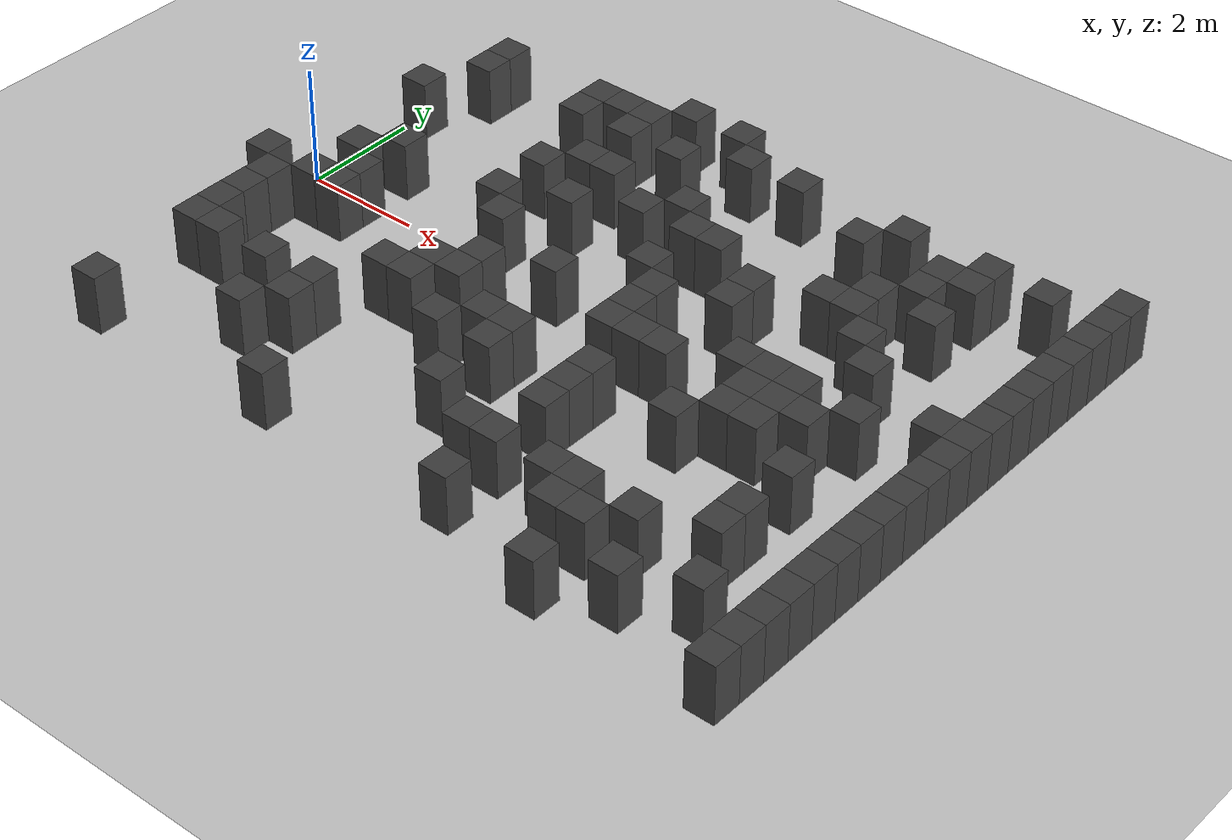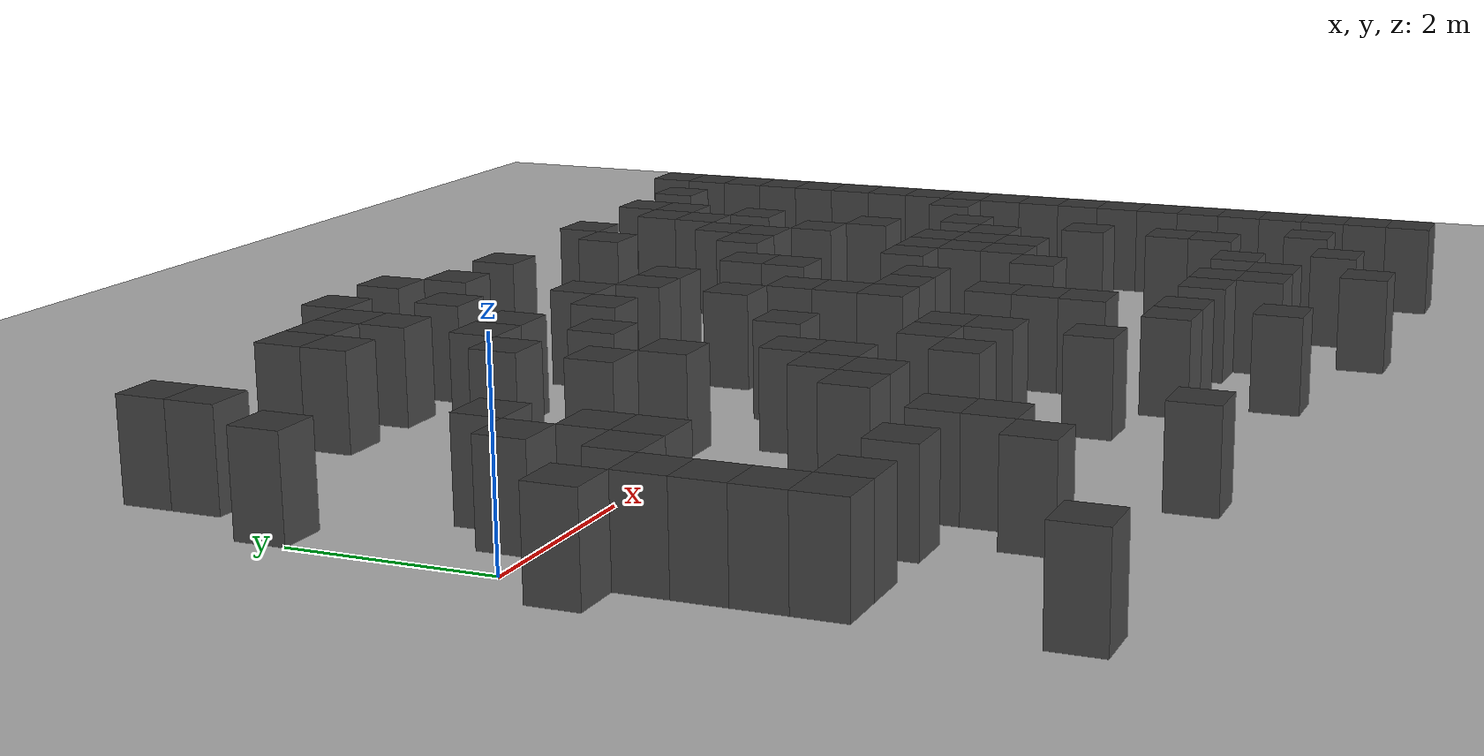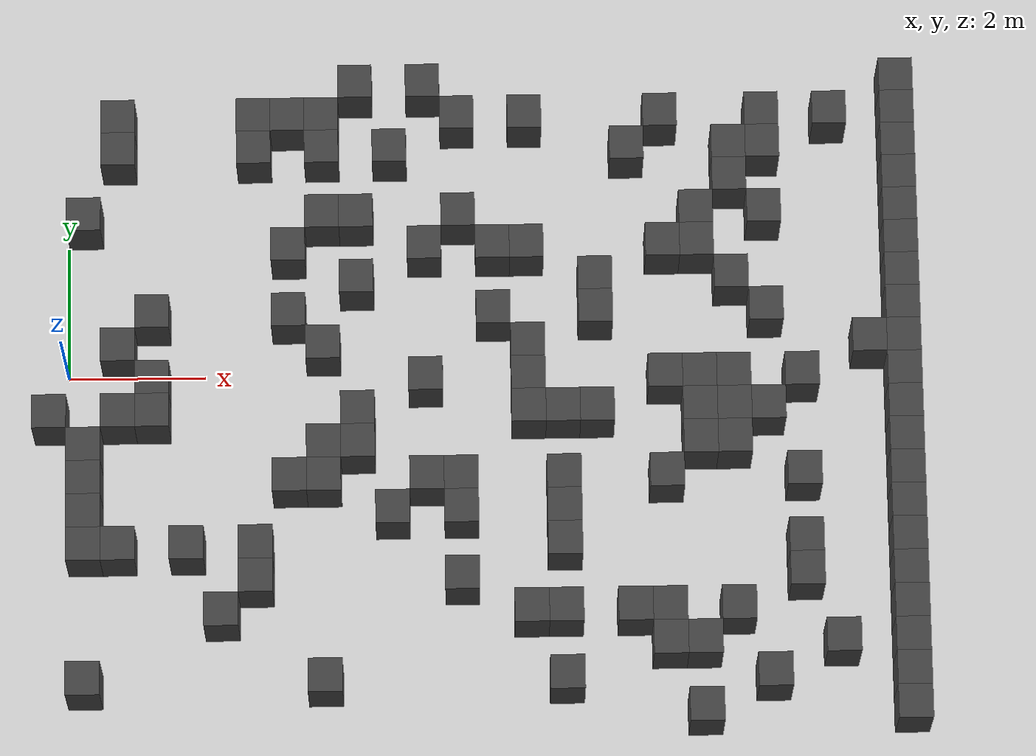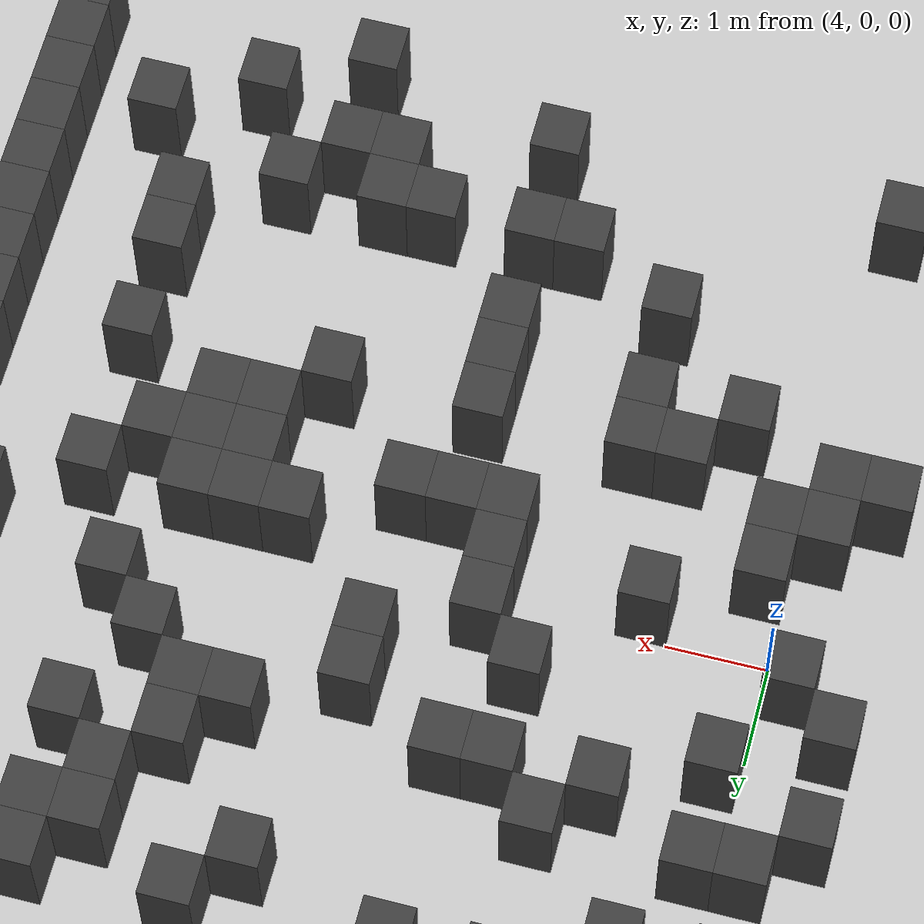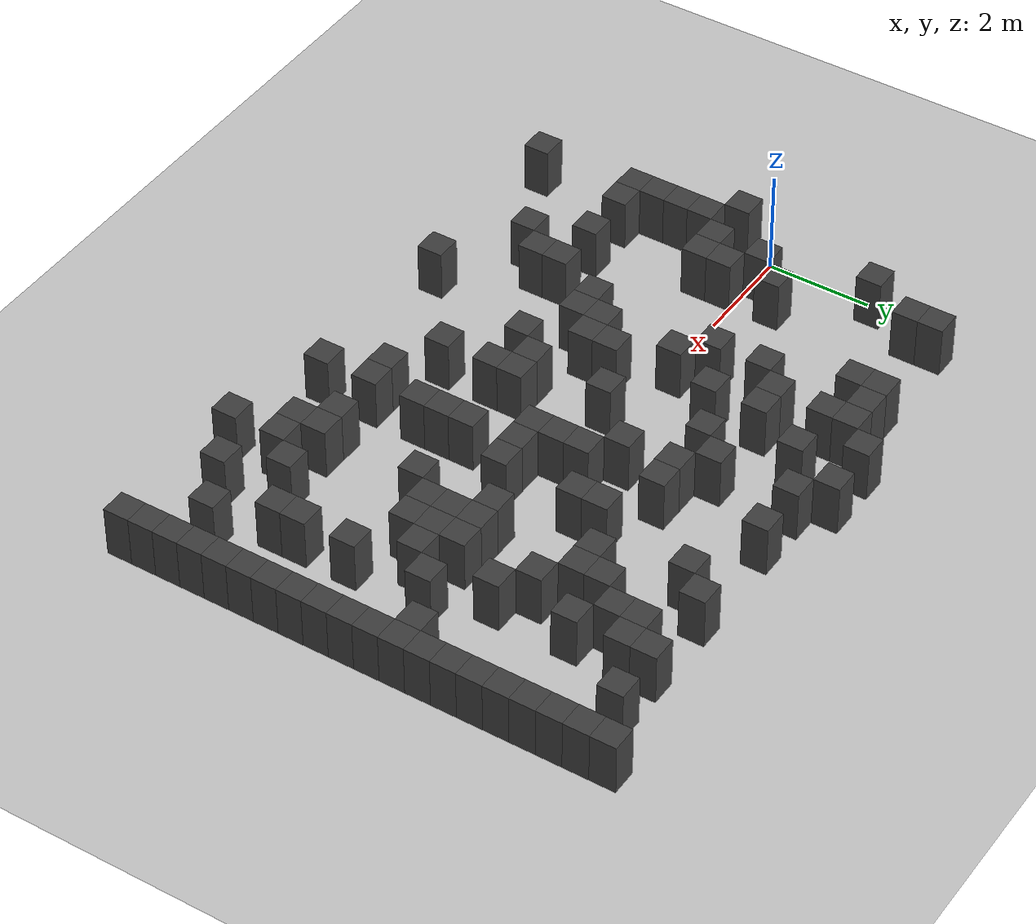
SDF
<sdf version="1.7">
 <world name="map_4752">
  <model name="ground_plane">
   <static>true</static>
   <link name="link">
    <collision name="collision">
     <geometry><plane><normal>0 0 1</normal><size>200 200</size></plane></geometry>
    </collision>
    <visual name="visual">
     <geometry><plane><normal>0 0 1</normal><size>200 200</size></plane></geometry>
     <material><ambient>0.8 0.8 0.8 1</ambient><diffuse>0.8 0.8 0.8 1</diffuse></material>
    </visual>
   </link>
  </model>
  <model name="maze_environment">
   <static>true</static>
   <link name="wall_246">
    <pose>4.250 4.250 0.500 0 0 0</pose>
    <collision name="col"><geometry><box><size>0.5 0.5 1.0</size></box></geometry></collision>
    <visual name="vis">
     <geometry><box><size>0.5 0.5 1.0</size></box></geometry>
     <material><ambient>0.15 0.15 0.15 1</ambient><diffuse>0.25 0.25 0.25 1</diffuse></material>
    </visual>
   </link>
   <link name="wall_247">
    <pose>5.250 4.250 0.500 0 0 0</pose>
    <collision name="col"><geometry><box><size>0.5 0.5 1.0</size></box></geometry></collision>
    <visual name="vis">
     <geometry><box><size>0.5 0.5 1.0</size></box></geometry>
     <material><ambient>0.15 0.15 0.15 1</ambient><diffuse>0.25 0.25 0.25 1</diffuse></material>
    </visual>
   </link>
   <link name="wall_248">
    <pose>12.250 4.250 0.500 0 0 0</pose>
    <collision name="col"><geometry><box><size>0.5 0.5 1.0</size></box></geometry></collision>
    <visual name="vis">
     <geometry><box><size>0.5 0.5 1.0</size></box></geometry>
     <material><ambient>0.15 0.15 0.15 1</ambient><diffuse>0.25 0.25 0.25 1</diffuse></material>
    </visual>
   </link>
   <link name="wall_257">
    <pose>0.750 3.750 0.500 0 0 0</pose>
    <collision name="col"><geometry><box><size>0.5 0.5 1.0</size></box></geometry></collision>
    <visual name="vis">
     <geometry><box><size>0.5 0.5 1.0</size></box></geometry>
     <material><ambient>0.15 0.15 0.15 1</ambient><diffuse>0.25 0.25 0.25 1</diffuse></material>
    </visual>
   </link>
   <link name="wall_258">
    <pose>2.750 3.750 0.500 0 0 0</pose>
    <collision name="col"><geometry><box><size>0.5 0.5 1.0</size></box></geometry></collision>
    <visual name="vis">
     <geometry><box><size>0.5 0.5 1.0</size></box></geometry>
     <material><ambient>0.15 0.15 0.15 1</ambient><diffuse>0.25 0.25 0.25 1</diffuse></material>
    </visual>
   </link>
   <link name="wall_259">
    <pose>3.250 3.750 0.500 0 0 0</pose>
    <collision name="col"><geometry><box><size>0.5 0.5 1.0</size></box></geometry></collision>
    <visual name="vis">
     <geometry><box><size>0.5 0.5 1.0</size></box></geometry>
     <material><ambient>0.15 0.15 0.15 1</ambient><diffuse>0.25 0.25 0.25 1</diffuse></material>
    </visual>
   </link>
   <link name="wall_260">
    <pose>3.750 3.750 0.500 0 0 0</pose>
    <collision name="col"><geometry><box><size>0.5 0.5 1.0</size></box></geometry></collision>
    <visual name="vis">
     <geometry><box><size>0.5 0.5 1.0</size></box></geometry>
     <material><ambient>0.15 0.15 0.15 1</ambient><diffuse>0.25 0.25 0.25 1</diffuse></material>
    </visual>
   </link>
   <link name="wall_261">
    <pose>5.750 3.750 0.500 0 0 0</pose>
    <collision name="col"><geometry><box><size>0.5 0.5 1.0</size></box></geometry></collision>
    <visual name="vis">
     <geometry><box><size>0.5 0.5 1.0</size></box></geometry>
     <material><ambient>0.15 0.15 0.15 1</ambient><diffuse>0.25 0.25 0.25 1</diffuse></material>
    </visual>
   </link>
   <link name="wall_262">
    <pose>6.750 3.750 0.500 0 0 0</pose>
    <collision name="col"><geometry><box><size>0.5 0.5 1.0</size></box></geometry></collision>
    <visual name="vis">
     <geometry><box><size>0.5 0.5 1.0</size></box></geometry>
     <material><ambient>0.15 0.15 0.15 1</ambient><diffuse>0.25 0.25 0.25 1</diffuse></material>
    </visual>
   </link>
   <link name="wall_263">
    <pose>8.750 3.750 0.500 0 0 0</pose>
    <collision name="col"><geometry><box><size>0.5 0.5 1.0</size></box></geometry></collision>
    <visual name="vis">
     <geometry><box><size>0.5 0.5 1.0</size></box></geometry>
     <material><ambient>0.15 0.15 0.15 1</ambient><diffuse>0.25 0.25 0.25 1</diffuse></material>
    </visual>
   </link>
   <link name="wall_264">
    <pose>10.250 3.750 0.500 0 0 0</pose>
    <collision name="col"><geometry><box><size>0.5 0.5 1.0</size></box></geometry></collision>
    <visual name="vis">
     <geometry><box><size>0.5 0.5 1.0</size></box></geometry>
     <material><ambient>0.15 0.15 0.15 1</ambient><diffuse>0.25 0.25 0.25 1</diffuse></material>
    </visual>
   </link>
   <link name="wall_265">
    <pose>11.250 3.750 0.500 0 0 0</pose>
    <collision name="col"><geometry><box><size>0.5 0.5 1.0</size></box></geometry></collision>
    <visual name="vis">
     <geometry><box><size>0.5 0.5 1.0</size></box></geometry>
     <material><ambient>0.15 0.15 0.15 1</ambient><diffuse>0.25 0.25 0.25 1</diffuse></material>
    </visual>
   </link>
   <link name="wall_266">
    <pose>12.250 3.750 0.500 0 0 0</pose>
    <collision name="col"><geometry><box><size>0.5 0.5 1.0</size></box></geometry></collision>
    <visual name="vis">
     <geometry><box><size>0.5 0.5 1.0</size></box></geometry>
     <material><ambient>0.15 0.15 0.15 1</ambient><diffuse>0.25 0.25 0.25 1</diffuse></material>
    </visual>
   </link>
   <link name="wall_272">
    <pose>0.750 3.250 0.500 0 0 0</pose>
    <collision name="col"><geometry><box><size>0.5 0.5 1.0</size></box></geometry></collision>
    <visual name="vis">
     <geometry><box><size>0.5 0.5 1.0</size></box></geometry>
     <material><ambient>0.15 0.15 0.15 1</ambient><diffuse>0.25 0.25 0.25 1</diffuse></material>
    </visual>
   </link>
   <link name="wall_273">
    <pose>2.750 3.250 0.500 0 0 0</pose>
    <collision name="col"><geometry><box><size>0.5 0.5 1.0</size></box></geometry></collision>
    <visual name="vis">
     <geometry><box><size>0.5 0.5 1.0</size></box></geometry>
     <material><ambient>0.15 0.15 0.15 1</ambient><diffuse>0.25 0.25 0.25 1</diffuse></material>
    </visual>
   </link>
   <link name="wall_274">
    <pose>3.750 3.250 0.500 0 0 0</pose>
    <collision name="col"><geometry><box><size>0.5 0.5 1.0</size></box></geometry></collision>
    <visual name="vis">
     <geometry><box><size>0.5 0.5 1.0</size></box></geometry>
     <material><ambient>0.15 0.15 0.15 1</ambient><diffuse>0.25 0.25 0.25 1</diffuse></material>
    </visual>
   </link>
   <link name="wall_275">
    <pose>4.750 3.250 0.500 0 0 0</pose>
    <collision name="col"><geometry><box><size>0.5 0.5 1.0</size></box></geometry></collision>
    <visual name="vis">
     <geometry><box><size>0.5 0.5 1.0</size></box></geometry>
     <material><ambient>0.15 0.15 0.15 1</ambient><diffuse>0.25 0.25 0.25 1</diffuse></material>
    </visual>
   </link>
   <link name="wall_276">
    <pose>8.250 3.250 0.500 0 0 0</pose>
    <collision name="col"><geometry><box><size>0.5 0.5 1.0</size></box></geometry></collision>
    <visual name="vis">
     <geometry><box><size>0.5 0.5 1.0</size></box></geometry>
     <material><ambient>0.15 0.15 0.15 1</ambient><diffuse>0.25 0.25 0.25 1</diffuse></material>
    </visual>
   </link>
   <link name="wall_277">
    <pose>9.750 3.250 0.500 0 0 0</pose>
    <collision name="col"><geometry><box><size>0.5 0.5 1.0</size></box></geometry></collision>
    <visual name="vis">
     <geometry><box><size>0.5 0.5 1.0</size></box></geometry>
     <material><ambient>0.15 0.15 0.15 1</ambient><diffuse>0.25 0.25 0.25 1</diffuse></material>
    </visual>
   </link>
   <link name="wall_278">
    <pose>10.250 3.250 0.500 0 0 0</pose>
    <collision name="col"><geometry><box><size>0.5 0.5 1.0</size></box></geometry></collision>
    <visual name="vis">
     <geometry><box><size>0.5 0.5 1.0</size></box></geometry>
     <material><ambient>0.15 0.15 0.15 1</ambient><diffuse>0.25 0.25 0.25 1</diffuse></material>
    </visual>
   </link>
   <link name="wall_279">
    <pose>12.250 3.250 0.500 0 0 0</pose>
    <collision name="col"><geometry><box><size>0.5 0.5 1.0</size></box></geometry></collision>
    <visual name="vis">
     <geometry><box><size>0.5 0.5 1.0</size></box></geometry>
     <material><ambient>0.15 0.15 0.15 1</ambient><diffuse>0.25 0.25 0.25 1</diffuse></material>
    </visual>
   </link>
   <link name="wall_286">
    <pose>9.750 2.750 0.500 0 0 0</pose>
    <collision name="col"><geometry><box><size>0.5 0.5 1.0</size></box></geometry></collision>
    <visual name="vis">
     <geometry><box><size>0.5 0.5 1.0</size></box></geometry>
     <material><ambient>0.15 0.15 0.15 1</ambient><diffuse>0.25 0.25 0.25 1</diffuse></material>
    </visual>
   </link>
   <link name="wall_287">
    <pose>12.250 2.750 0.500 0 0 0</pose>
    <collision name="col"><geometry><box><size>0.5 0.5 1.0</size></box></geometry></collision>
    <visual name="vis">
     <geometry><box><size>0.5 0.5 1.0</size></box></geometry>
     <material><ambient>0.15 0.15 0.15 1</ambient><diffuse>0.25 0.25 0.25 1</diffuse></material>
    </visual>
   </link>
   <link name="wall_296">
    <pose>0.250 2.250 0.500 0 0 0</pose>
    <collision name="col"><geometry><box><size>0.5 0.5 1.0</size></box></geometry></collision>
    <visual name="vis">
     <geometry><box><size>0.5 0.5 1.0</size></box></geometry>
     <material><ambient>0.15 0.15 0.15 1</ambient><diffuse>0.25 0.25 0.25 1</diffuse></material>
    </visual>
   </link>
   <link name="wall_297">
    <pose>3.750 2.250 0.500 0 0 0</pose>
    <collision name="col"><geometry><box><size>0.5 0.5 1.0</size></box></geometry></collision>
    <visual name="vis">
     <geometry><box><size>0.5 0.5 1.0</size></box></geometry>
     <material><ambient>0.15 0.15 0.15 1</ambient><diffuse>0.25 0.25 0.25 1</diffuse></material>
    </visual>
   </link>
   <link name="wall_298">
    <pose>4.250 2.250 0.500 0 0 0</pose>
    <collision name="col"><geometry><box><size>0.5 0.5 1.0</size></box></geometry></collision>
    <visual name="vis">
     <geometry><box><size>0.5 0.5 1.0</size></box></geometry>
     <material><ambient>0.15 0.15 0.15 1</ambient><diffuse>0.25 0.25 0.25 1</diffuse></material>
    </visual>
   </link>
   <link name="wall_299">
    <pose>5.750 2.250 0.500 0 0 0</pose>
    <collision name="col"><geometry><box><size>0.5 0.5 1.0</size></box></geometry></collision>
    <visual name="vis">
     <geometry><box><size>0.5 0.5 1.0</size></box></geometry>
     <material><ambient>0.15 0.15 0.15 1</ambient><diffuse>0.25 0.25 0.25 1</diffuse></material>
    </visual>
   </link>
   <link name="wall_300">
    <pose>9.250 2.250 0.500 0 0 0</pose>
    <collision name="col"><geometry><box><size>0.5 0.5 1.0</size></box></geometry></collision>
    <visual name="vis">
     <geometry><box><size>0.5 0.5 1.0</size></box></geometry>
     <material><ambient>0.15 0.15 0.15 1</ambient><diffuse>0.25 0.25 0.25 1</diffuse></material>
    </visual>
   </link>
   <link name="wall_301">
    <pose>10.250 2.250 0.500 0 0 0</pose>
    <collision name="col"><geometry><box><size>0.5 0.5 1.0</size></box></geometry></collision>
    <visual name="vis">
     <geometry><box><size>0.5 0.5 1.0</size></box></geometry>
     <material><ambient>0.15 0.15 0.15 1</ambient><diffuse>0.25 0.25 0.25 1</diffuse></material>
    </visual>
   </link>
   <link name="wall_302">
    <pose>12.250 2.250 0.500 0 0 0</pose>
    <collision name="col"><geometry><box><size>0.5 0.5 1.0</size></box></geometry></collision>
    <visual name="vis">
     <geometry><box><size>0.5 0.5 1.0</size></box></geometry>
     <material><ambient>0.15 0.15 0.15 1</ambient><diffuse>0.25 0.25 0.25 1</diffuse></material>
    </visual>
   </link>
   <link name="wall_308">
    <pose>3.250 1.750 0.500 0 0 0</pose>
    <collision name="col"><geometry><box><size>0.5 0.5 1.0</size></box></geometry></collision>
    <visual name="vis">
     <geometry><box><size>0.5 0.5 1.0</size></box></geometry>
     <material><ambient>0.15 0.15 0.15 1</ambient><diffuse>0.25 0.25 0.25 1</diffuse></material>
    </visual>
   </link>
   <link name="wall_309">
    <pose>5.250 1.750 0.500 0 0 0</pose>
    <collision name="col"><geometry><box><size>0.5 0.5 1.0</size></box></geometry></collision>
    <visual name="vis">
     <geometry><box><size>0.5 0.5 1.0</size></box></geometry>
     <material><ambient>0.15 0.15 0.15 1</ambient><diffuse>0.25 0.25 0.25 1</diffuse></material>
    </visual>
   </link>
   <link name="wall_310">
    <pose>6.250 1.750 0.500 0 0 0</pose>
    <collision name="col"><geometry><box><size>0.5 0.5 1.0</size></box></geometry></collision>
    <visual name="vis">
     <geometry><box><size>0.5 0.5 1.0</size></box></geometry>
     <material><ambient>0.15 0.15 0.15 1</ambient><diffuse>0.25 0.25 0.25 1</diffuse></material>
    </visual>
   </link>
   <link name="wall_311">
    <pose>6.750 1.750 0.500 0 0 0</pose>
    <collision name="col"><geometry><box><size>0.5 0.5 1.0</size></box></geometry></collision>
    <visual name="vis">
     <geometry><box><size>0.5 0.5 1.0</size></box></geometry>
     <material><ambient>0.15 0.15 0.15 1</ambient><diffuse>0.25 0.25 0.25 1</diffuse></material>
    </visual>
   </link>
   <link name="wall_312">
    <pose>8.750 1.750 0.500 0 0 0</pose>
    <collision name="col"><geometry><box><size>0.5 0.5 1.0</size></box></geometry></collision>
    <visual name="vis">
     <geometry><box><size>0.5 0.5 1.0</size></box></geometry>
     <material><ambient>0.15 0.15 0.15 1</ambient><diffuse>0.25 0.25 0.25 1</diffuse></material>
    </visual>
   </link>
   <link name="wall_313">
    <pose>9.250 1.750 0.500 0 0 0</pose>
    <collision name="col"><geometry><box><size>0.5 0.5 1.0</size></box></geometry></collision>
    <visual name="vis">
     <geometry><box><size>0.5 0.5 1.0</size></box></geometry>
     <material><ambient>0.15 0.15 0.15 1</ambient><diffuse>0.25 0.25 0.25 1</diffuse></material>
    </visual>
   </link>
   <link name="wall_314">
    <pose>12.250 1.750 0.500 0 0 0</pose>
    <collision name="col"><geometry><box><size>0.5 0.5 1.0</size></box></geometry></collision>
    <visual name="vis">
     <geometry><box><size>0.5 0.5 1.0</size></box></geometry>
     <material><ambient>0.15 0.15 0.15 1</ambient><diffuse>0.25 0.25 0.25 1</diffuse></material>
    </visual>
   </link>
   <link name="wall_320">
    <pose>4.250 1.250 0.500 0 0 0</pose>
    <collision name="col"><geometry><box><size>0.5 0.5 1.0</size></box></geometry></collision>
    <visual name="vis">
     <geometry><box><size>0.5 0.5 1.0</size></box></geometry>
     <material><ambient>0.15 0.15 0.15 1</ambient><diffuse>0.25 0.25 0.25 1</diffuse></material>
    </visual>
   </link>
   <link name="wall_321">
    <pose>7.750 1.250 0.500 0 0 0</pose>
    <collision name="col"><geometry><box><size>0.5 0.5 1.0</size></box></geometry></collision>
    <visual name="vis">
     <geometry><box><size>0.5 0.5 1.0</size></box></geometry>
     <material><ambient>0.15 0.15 0.15 1</ambient><diffuse>0.25 0.25 0.25 1</diffuse></material>
    </visual>
   </link>
   <link name="wall_322">
    <pose>9.750 1.250 0.500 0 0 0</pose>
    <collision name="col"><geometry><box><size>0.5 0.5 1.0</size></box></geometry></collision>
    <visual name="vis">
     <geometry><box><size>0.5 0.5 1.0</size></box></geometry>
     <material><ambient>0.15 0.15 0.15 1</ambient><diffuse>0.25 0.25 0.25 1</diffuse></material>
    </visual>
   </link>
   <link name="wall_323">
    <pose>12.250 1.250 0.500 0 0 0</pose>
    <collision name="col"><geometry><box><size>0.5 0.5 1.0</size></box></geometry></collision>
    <visual name="vis">
     <geometry><box><size>0.5 0.5 1.0</size></box></geometry>
     <material><ambient>0.15 0.15 0.15 1</ambient><diffuse>0.25 0.25 0.25 1</diffuse></material>
    </visual>
   </link>
   <link name="wall_334">
    <pose>1.250 0.750 0.500 0 0 0</pose>
    <collision name="col"><geometry><box><size>0.5 0.5 1.0</size></box></geometry></collision>
    <visual name="vis">
     <geometry><box><size>0.5 0.5 1.0</size></box></geometry>
     <material><ambient>0.15 0.15 0.15 1</ambient><diffuse>0.25 0.25 0.25 1</diffuse></material>
    </visual>
   </link>
   <link name="wall_335">
    <pose>3.250 0.750 0.500 0 0 0</pose>
    <collision name="col"><geometry><box><size>0.5 0.5 1.0</size></box></geometry></collision>
    <visual name="vis">
     <geometry><box><size>0.5 0.5 1.0</size></box></geometry>
     <material><ambient>0.15 0.15 0.15 1</ambient><diffuse>0.25 0.25 0.25 1</diffuse></material>
    </visual>
   </link>
   <link name="wall_336">
    <pose>6.250 0.750 0.500 0 0 0</pose>
    <collision name="col"><geometry><box><size>0.5 0.5 1.0</size></box></geometry></collision>
    <visual name="vis">
     <geometry><box><size>0.5 0.5 1.0</size></box></geometry>
     <material><ambient>0.15 0.15 0.15 1</ambient><diffuse>0.25 0.25 0.25 1</diffuse></material>
    </visual>
   </link>
   <link name="wall_337">
    <pose>7.750 0.750 0.500 0 0 0</pose>
    <collision name="col"><geometry><box><size>0.5 0.5 1.0</size></box></geometry></collision>
    <visual name="vis">
     <geometry><box><size>0.5 0.5 1.0</size></box></geometry>
     <material><ambient>0.15 0.15 0.15 1</ambient><diffuse>0.25 0.25 0.25 1</diffuse></material>
    </visual>
   </link>
   <link name="wall_338">
    <pose>10.250 0.750 0.500 0 0 0</pose>
    <collision name="col"><geometry><box><size>0.5 0.5 1.0</size></box></geometry></collision>
    <visual name="vis">
     <geometry><box><size>0.5 0.5 1.0</size></box></geometry>
     <material><ambient>0.15 0.15 0.15 1</ambient><diffuse>0.25 0.25 0.25 1</diffuse></material>
    </visual>
   </link>
   <link name="wall_339">
    <pose>12.250 0.750 0.500 0 0 0</pose>
    <collision name="col"><geometry><box><size>0.5 0.5 1.0</size></box></geometry></collision>
    <visual name="vis">
     <geometry><box><size>0.5 0.5 1.0</size></box></geometry>
     <material><ambient>0.15 0.15 0.15 1</ambient><diffuse>0.25 0.25 0.25 1</diffuse></material>
    </visual>
   </link>
   <link name="wall_343">
    <pose>0.750 0.250 0.500 0 0 0</pose>
    <collision name="col"><geometry><box><size>0.5 0.5 1.0</size></box></geometry></collision>
    <visual name="vis">
     <geometry><box><size>0.5 0.5 1.0</size></box></geometry>
     <material><ambient>0.15 0.15 0.15 1</ambient><diffuse>0.25 0.25 0.25 1</diffuse></material>
    </visual>
   </link>
   <link name="wall_344">
    <pose>3.750 0.250 0.500 0 0 0</pose>
    <collision name="col"><geometry><box><size>0.5 0.5 1.0</size></box></geometry></collision>
    <visual name="vis">
     <geometry><box><size>0.5 0.5 1.0</size></box></geometry>
     <material><ambient>0.15 0.15 0.15 1</ambient><diffuse>0.25 0.25 0.25 1</diffuse></material>
    </visual>
   </link>
   <link name="wall_345">
    <pose>6.750 0.250 0.500 0 0 0</pose>
    <collision name="col"><geometry><box><size>0.5 0.5 1.0</size></box></geometry></collision>
    <visual name="vis">
     <geometry><box><size>0.5 0.5 1.0</size></box></geometry>
     <material><ambient>0.15 0.15 0.15 1</ambient><diffuse>0.25 0.25 0.25 1</diffuse></material>
    </visual>
   </link>
   <link name="wall_346">
    <pose>11.750 0.250 0.500 0 0 0</pose>
    <collision name="col"><geometry><box><size>0.5 0.5 1.0</size></box></geometry></collision>
    <visual name="vis">
     <geometry><box><size>0.5 0.5 1.0</size></box></geometry>
     <material><ambient>0.15 0.15 0.15 1</ambient><diffuse>0.25 0.25 0.25 1</diffuse></material>
    </visual>
   </link>
   <link name="wall_347">
    <pose>12.250 0.250 0.500 0 0 0</pose>
    <collision name="col"><geometry><box><size>0.5 0.5 1.0</size></box></geometry></collision>
    <visual name="vis">
     <geometry><box><size>0.5 0.5 1.0</size></box></geometry>
     <material><ambient>0.15 0.15 0.15 1</ambient><diffuse>0.25 0.25 0.25 1</diffuse></material>
    </visual>
   </link>
   <link name="wall_355">
    <pose>1.250 -0.250 0.500 0 0 0</pose>
    <collision name="col"><geometry><box><size>0.5 0.5 1.0</size></box></geometry></collision>
    <visual name="vis">
     <geometry><box><size>0.5 0.5 1.0</size></box></geometry>
     <material><ambient>0.15 0.15 0.15 1</ambient><diffuse>0.25 0.25 0.25 1</diffuse></material>
    </visual>
   </link>
   <link name="wall_356">
    <pose>5.250 -0.250 0.500 0 0 0</pose>
    <collision name="col"><geometry><box><size>0.5 0.5 1.0</size></box></geometry></collision>
    <visual name="vis">
     <geometry><box><size>0.5 0.5 1.0</size></box></geometry>
     <material><ambient>0.15 0.15 0.15 1</ambient><diffuse>0.25 0.25 0.25 1</diffuse></material>
    </visual>
   </link>
   <link name="wall_357">
    <pose>6.750 -0.250 0.500 0 0 0</pose>
    <collision name="col"><geometry><box><size>0.5 0.5 1.0</size></box></geometry></collision>
    <visual name="vis">
     <geometry><box><size>0.5 0.5 1.0</size></box></geometry>
     <material><ambient>0.15 0.15 0.15 1</ambient><diffuse>0.25 0.25 0.25 1</diffuse></material>
    </visual>
   </link>
   <link name="wall_358">
    <pose>8.750 -0.250 0.500 0 0 0</pose>
    <collision name="col"><geometry><box><size>0.5 0.5 1.0</size></box></geometry></collision>
    <visual name="vis">
     <geometry><box><size>0.5 0.5 1.0</size></box></geometry>
     <material><ambient>0.15 0.15 0.15 1</ambient><diffuse>0.25 0.25 0.25 1</diffuse></material>
    </visual>
   </link>
   <link name="wall_359">
    <pose>9.250 -0.250 0.500 0 0 0</pose>
    <collision name="col"><geometry><box><size>0.5 0.5 1.0</size></box></geometry></collision>
    <visual name="vis">
     <geometry><box><size>0.5 0.5 1.0</size></box></geometry>
     <material><ambient>0.15 0.15 0.15 1</ambient><diffuse>0.25 0.25 0.25 1</diffuse></material>
    </visual>
   </link>
   <link name="wall_360">
    <pose>9.750 -0.250 0.500 0 0 0</pose>
    <collision name="col"><geometry><box><size>0.5 0.5 1.0</size></box></geometry></collision>
    <visual name="vis">
     <geometry><box><size>0.5 0.5 1.0</size></box></geometry>
     <material><ambient>0.15 0.15 0.15 1</ambient><diffuse>0.25 0.25 0.25 1</diffuse></material>
    </visual>
   </link>
   <link name="wall_361">
    <pose>10.750 -0.250 0.500 0 0 0</pose>
    <collision name="col"><geometry><box><size>0.5 0.5 1.0</size></box></geometry></collision>
    <visual name="vis">
     <geometry><box><size>0.5 0.5 1.0</size></box></geometry>
     <material><ambient>0.15 0.15 0.15 1</ambient><diffuse>0.25 0.25 0.25 1</diffuse></material>
    </visual>
   </link>
   <link name="wall_362">
    <pose>12.250 -0.250 0.500 0 0 0</pose>
    <collision name="col"><geometry><box><size>0.5 0.5 1.0</size></box></geometry></collision>
    <visual name="vis">
     <geometry><box><size>0.5 0.5 1.0</size></box></geometry>
     <material><ambient>0.15 0.15 0.15 1</ambient><diffuse>0.25 0.25 0.25 1</diffuse></material>
    </visual>
   </link>
   <link name="wall_369">
    <pose>-0.250 -0.750 0.500 0 0 0</pose>
    <collision name="col"><geometry><box><size>0.5 0.5 1.0</size></box></geometry></collision>
    <visual name="vis">
     <geometry><box><size>0.5 0.5 1.0</size></box></geometry>
     <material><ambient>0.15 0.15 0.15 1</ambient><diffuse>0.25 0.25 0.25 1</diffuse></material>
    </visual>
   </link>
   <link name="wall_370">
    <pose>0.750 -0.750 0.500 0 0 0</pose>
    <collision name="col"><geometry><box><size>0.5 0.5 1.0</size></box></geometry></collision>
    <visual name="vis">
     <geometry><box><size>0.5 0.5 1.0</size></box></geometry>
     <material><ambient>0.15 0.15 0.15 1</ambient><diffuse>0.25 0.25 0.25 1</diffuse></material>
    </visual>
   </link>
   <link name="wall_371">
    <pose>1.250 -0.750 0.500 0 0 0</pose>
    <collision name="col"><geometry><box><size>0.5 0.5 1.0</size></box></geometry></collision>
    <visual name="vis">
     <geometry><box><size>0.5 0.5 1.0</size></box></geometry>
     <material><ambient>0.15 0.15 0.15 1</ambient><diffuse>0.25 0.25 0.25 1</diffuse></material>
    </visual>
   </link>
   <link name="wall_372">
    <pose>4.250 -0.750 0.500 0 0 0</pose>
    <collision name="col"><geometry><box><size>0.5 0.5 1.0</size></box></geometry></collision>
    <visual name="vis">
     <geometry><box><size>0.5 0.5 1.0</size></box></geometry>
     <material><ambient>0.15 0.15 0.15 1</ambient><diffuse>0.25 0.25 0.25 1</diffuse></material>
    </visual>
   </link>
   <link name="wall_373">
    <pose>6.750 -0.750 0.500 0 0 0</pose>
    <collision name="col"><geometry><box><size>0.5 0.5 1.0</size></box></geometry></collision>
    <visual name="vis">
     <geometry><box><size>0.5 0.5 1.0</size></box></geometry>
     <material><ambient>0.15 0.15 0.15 1</ambient><diffuse>0.25 0.25 0.25 1</diffuse></material>
    </visual>
   </link>
   <link name="wall_374">
    <pose>7.250 -0.750 0.500 0 0 0</pose>
    <collision name="col"><geometry><box><size>0.5 0.5 1.0</size></box></geometry></collision>
    <visual name="vis">
     <geometry><box><size>0.5 0.5 1.0</size></box></geometry>
     <material><ambient>0.15 0.15 0.15 1</ambient><diffuse>0.25 0.25 0.25 1</diffuse></material>
    </visual>
   </link>
   <link name="wall_375">
    <pose>7.750 -0.750 0.500 0 0 0</pose>
    <collision name="col"><geometry><box><size>0.5 0.5 1.0</size></box></geometry></collision>
    <visual name="vis">
     <geometry><box><size>0.5 0.5 1.0</size></box></geometry>
     <material><ambient>0.15 0.15 0.15 1</ambient><diffuse>0.25 0.25 0.25 1</diffuse></material>
    </visual>
   </link>
   <link name="wall_376">
    <pose>9.250 -0.750 0.500 0 0 0</pose>
    <collision name="col"><geometry><box><size>0.5 0.5 1.0</size></box></geometry></collision>
    <visual name="vis">
     <geometry><box><size>0.5 0.5 1.0</size></box></geometry>
     <material><ambient>0.15 0.15 0.15 1</ambient><diffuse>0.25 0.25 0.25 1</diffuse></material>
    </visual>
   </link>
   <link name="wall_377">
    <pose>9.750 -0.750 0.500 0 0 0</pose>
    <collision name="col"><geometry><box><size>0.5 0.5 1.0</size></box></geometry></collision>
    <visual name="vis">
     <geometry><box><size>0.5 0.5 1.0</size></box></geometry>
     <material><ambient>0.15 0.15 0.15 1</ambient><diffuse>0.25 0.25 0.25 1</diffuse></material>
    </visual>
   </link>
   <link name="wall_378">
    <pose>10.250 -0.750 0.500 0 0 0</pose>
    <collision name="col"><geometry><box><size>0.5 0.5 1.0</size></box></geometry></collision>
    <visual name="vis">
     <geometry><box><size>0.5 0.5 1.0</size></box></geometry>
     <material><ambient>0.15 0.15 0.15 1</ambient><diffuse>0.25 0.25 0.25 1</diffuse></material>
    </visual>
   </link>
   <link name="wall_379">
    <pose>12.250 -0.750 0.500 0 0 0</pose>
    <collision name="col"><geometry><box><size>0.5 0.5 1.0</size></box></geometry></collision>
    <visual name="vis">
     <geometry><box><size>0.5 0.5 1.0</size></box></geometry>
     <material><ambient>0.15 0.15 0.15 1</ambient><diffuse>0.25 0.25 0.25 1</diffuse></material>
    </visual>
   </link>
   <link name="wall_387">
    <pose>0.250 -1.250 0.500 0 0 0</pose>
    <collision name="col"><geometry><box><size>0.5 0.5 1.0</size></box></geometry></collision>
    <visual name="vis">
     <geometry><box><size>0.5 0.5 1.0</size></box></geometry>
     <material><ambient>0.15 0.15 0.15 1</ambient><diffuse>0.25 0.25 0.25 1</diffuse></material>
    </visual>
   </link>
   <link name="wall_388">
    <pose>3.750 -1.250 0.500 0 0 0</pose>
    <collision name="col"><geometry><box><size>0.5 0.5 1.0</size></box></geometry></collision>
    <visual name="vis">
     <geometry><box><size>0.5 0.5 1.0</size></box></geometry>
     <material><ambient>0.15 0.15 0.15 1</ambient><diffuse>0.25 0.25 0.25 1</diffuse></material>
    </visual>
   </link>
   <link name="wall_389">
    <pose>4.250 -1.250 0.500 0 0 0</pose>
    <collision name="col"><geometry><box><size>0.5 0.5 1.0</size></box></geometry></collision>
    <visual name="vis">
     <geometry><box><size>0.5 0.5 1.0</size></box></geometry>
     <material><ambient>0.15 0.15 0.15 1</ambient><diffuse>0.25 0.25 0.25 1</diffuse></material>
    </visual>
   </link>
   <link name="wall_390">
    <pose>9.250 -1.250 0.500 0 0 0</pose>
    <collision name="col"><geometry><box><size>0.5 0.5 1.0</size></box></geometry></collision>
    <visual name="vis">
     <geometry><box><size>0.5 0.5 1.0</size></box></geometry>
     <material><ambient>0.15 0.15 0.15 1</ambient><diffuse>0.25 0.25 0.25 1</diffuse></material>
    </visual>
   </link>
   <link name="wall_391">
    <pose>9.750 -1.250 0.500 0 0 0</pose>
    <collision name="col"><geometry><box><size>0.5 0.5 1.0</size></box></geometry></collision>
    <visual name="vis">
     <geometry><box><size>0.5 0.5 1.0</size></box></geometry>
     <material><ambient>0.15 0.15 0.15 1</ambient><diffuse>0.25 0.25 0.25 1</diffuse></material>
    </visual>
   </link>
   <link name="wall_392">
    <pose>12.250 -1.250 0.500 0 0 0</pose>
    <collision name="col"><geometry><box><size>0.5 0.5 1.0</size></box></geometry></collision>
    <visual name="vis">
     <geometry><box><size>0.5 0.5 1.0</size></box></geometry>
     <material><ambient>0.15 0.15 0.15 1</ambient><diffuse>0.25 0.25 0.25 1</diffuse></material>
    </visual>
   </link>
   <link name="wall_400">
    <pose>0.250 -1.750 0.500 0 0 0</pose>
    <collision name="col"><geometry><box><size>0.5 0.5 1.0</size></box></geometry></collision>
    <visual name="vis">
     <geometry><box><size>0.5 0.5 1.0</size></box></geometry>
     <material><ambient>0.15 0.15 0.15 1</ambient><diffuse>0.25 0.25 0.25 1</diffuse></material>
    </visual>
   </link>
   <link name="wall_401">
    <pose>3.250 -1.750 0.500 0 0 0</pose>
    <collision name="col"><geometry><box><size>0.5 0.5 1.0</size></box></geometry></collision>
    <visual name="vis">
     <geometry><box><size>0.5 0.5 1.0</size></box></geometry>
     <material><ambient>0.15 0.15 0.15 1</ambient><diffuse>0.25 0.25 0.25 1</diffuse></material>
    </visual>
   </link>
   <link name="wall_402">
    <pose>3.750 -1.750 0.500 0 0 0</pose>
    <collision name="col"><geometry><box><size>0.5 0.5 1.0</size></box></geometry></collision>
    <visual name="vis">
     <geometry><box><size>0.5 0.5 1.0</size></box></geometry>
     <material><ambient>0.15 0.15 0.15 1</ambient><diffuse>0.25 0.25 0.25 1</diffuse></material>
    </visual>
   </link>
   <link name="wall_403">
    <pose>5.250 -1.750 0.500 0 0 0</pose>
    <collision name="col"><geometry><box><size>0.5 0.5 1.0</size></box></geometry></collision>
    <visual name="vis">
     <geometry><box><size>0.5 0.5 1.0</size></box></geometry>
     <material><ambient>0.15 0.15 0.15 1</ambient><diffuse>0.25 0.25 0.25 1</diffuse></material>
    </visual>
   </link>
   <link name="wall_404">
    <pose>5.750 -1.750 0.500 0 0 0</pose>
    <collision name="col"><geometry><box><size>0.5 0.5 1.0</size></box></geometry></collision>
    <visual name="vis">
     <geometry><box><size>0.5 0.5 1.0</size></box></geometry>
     <material><ambient>0.15 0.15 0.15 1</ambient><diffuse>0.25 0.25 0.25 1</diffuse></material>
    </visual>
   </link>
   <link name="wall_405">
    <pose>7.250 -1.750 0.500 0 0 0</pose>
    <collision name="col"><geometry><box><size>0.5 0.5 1.0</size></box></geometry></collision>
    <visual name="vis">
     <geometry><box><size>0.5 0.5 1.0</size></box></geometry>
     <material><ambient>0.15 0.15 0.15 1</ambient><diffuse>0.25 0.25 0.25 1</diffuse></material>
    </visual>
   </link>
   <link name="wall_406">
    <pose>8.750 -1.750 0.500 0 0 0</pose>
    <collision name="col"><geometry><box><size>0.5 0.5 1.0</size></box></geometry></collision>
    <visual name="vis">
     <geometry><box><size>0.5 0.5 1.0</size></box></geometry>
     <material><ambient>0.15 0.15 0.15 1</ambient><diffuse>0.25 0.25 0.25 1</diffuse></material>
    </visual>
   </link>
   <link name="wall_407">
    <pose>10.750 -1.750 0.500 0 0 0</pose>
    <collision name="col"><geometry><box><size>0.5 0.5 1.0</size></box></geometry></collision>
    <visual name="vis">
     <geometry><box><size>0.5 0.5 1.0</size></box></geometry>
     <material><ambient>0.15 0.15 0.15 1</ambient><diffuse>0.25 0.25 0.25 1</diffuse></material>
    </visual>
   </link>
   <link name="wall_408">
    <pose>12.250 -1.750 0.500 0 0 0</pose>
    <collision name="col"><geometry><box><size>0.5 0.5 1.0</size></box></geometry></collision>
    <visual name="vis">
     <geometry><box><size>0.5 0.5 1.0</size></box></geometry>
     <material><ambient>0.15 0.15 0.15 1</ambient><diffuse>0.25 0.25 0.25 1</diffuse></material>
    </visual>
   </link>
   <link name="wall_421">
    <pose>0.250 -2.250 0.500 0 0 0</pose>
    <collision name="col"><geometry><box><size>0.5 0.5 1.0</size></box></geometry></collision>
    <visual name="vis">
     <geometry><box><size>0.5 0.5 1.0</size></box></geometry>
     <material><ambient>0.15 0.15 0.15 1</ambient><diffuse>0.25 0.25 0.25 1</diffuse></material>
    </visual>
   </link>
   <link name="wall_422">
    <pose>4.750 -2.250 0.500 0 0 0</pose>
    <collision name="col"><geometry><box><size>0.5 0.5 1.0</size></box></geometry></collision>
    <visual name="vis">
     <geometry><box><size>0.5 0.5 1.0</size></box></geometry>
     <material><ambient>0.15 0.15 0.15 1</ambient><diffuse>0.25 0.25 0.25 1</diffuse></material>
    </visual>
   </link>
   <link name="wall_423">
    <pose>5.750 -2.250 0.500 0 0 0</pose>
    <collision name="col"><geometry><box><size>0.5 0.5 1.0</size></box></geometry></collision>
    <visual name="vis">
     <geometry><box><size>0.5 0.5 1.0</size></box></geometry>
     <material><ambient>0.15 0.15 0.15 1</ambient><diffuse>0.25 0.25 0.25 1</diffuse></material>
    </visual>
   </link>
   <link name="wall_424">
    <pose>7.250 -2.250 0.500 0 0 0</pose>
    <collision name="col"><geometry><box><size>0.5 0.5 1.0</size></box></geometry></collision>
    <visual name="vis">
     <geometry><box><size>0.5 0.5 1.0</size></box></geometry>
     <material><ambient>0.15 0.15 0.15 1</ambient><diffuse>0.25 0.25 0.25 1</diffuse></material>
    </visual>
   </link>
   <link name="wall_425">
    <pose>12.250 -2.250 0.500 0 0 0</pose>
    <collision name="col"><geometry><box><size>0.5 0.5 1.0</size></box></geometry></collision>
    <visual name="vis">
     <geometry><box><size>0.5 0.5 1.0</size></box></geometry>
     <material><ambient>0.15 0.15 0.15 1</ambient><diffuse>0.25 0.25 0.25 1</diffuse></material>
    </visual>
   </link>
   <link name="wall_432">
    <pose>0.250 -2.750 0.500 0 0 0</pose>
    <collision name="col"><geometry><box><size>0.5 0.5 1.0</size></box></geometry></collision>
    <visual name="vis">
     <geometry><box><size>0.5 0.5 1.0</size></box></geometry>
     <material><ambient>0.15 0.15 0.15 1</ambient><diffuse>0.25 0.25 0.25 1</diffuse></material>
    </visual>
   </link>
   <link name="wall_433">
    <pose>0.750 -2.750 0.500 0 0 0</pose>
    <collision name="col"><geometry><box><size>0.5 0.5 1.0</size></box></geometry></collision>
    <visual name="vis">
     <geometry><box><size>0.5 0.5 1.0</size></box></geometry>
     <material><ambient>0.15 0.15 0.15 1</ambient><diffuse>0.25 0.25 0.25 1</diffuse></material>
    </visual>
   </link>
   <link name="wall_434">
    <pose>1.750 -2.750 0.500 0 0 0</pose>
    <collision name="col"><geometry><box><size>0.5 0.5 1.0</size></box></geometry></collision>
    <visual name="vis">
     <geometry><box><size>0.5 0.5 1.0</size></box></geometry>
     <material><ambient>0.15 0.15 0.15 1</ambient><diffuse>0.25 0.25 0.25 1</diffuse></material>
    </visual>
   </link>
   <link name="wall_435">
    <pose>2.750 -2.750 0.500 0 0 0</pose>
    <collision name="col"><geometry><box><size>0.5 0.5 1.0</size></box></geometry></collision>
    <visual name="vis">
     <geometry><box><size>0.5 0.5 1.0</size></box></geometry>
     <material><ambient>0.15 0.15 0.15 1</ambient><diffuse>0.25 0.25 0.25 1</diffuse></material>
    </visual>
   </link>
   <link name="wall_436">
    <pose>7.250 -2.750 0.500 0 0 0</pose>
    <collision name="col"><geometry><box><size>0.5 0.5 1.0</size></box></geometry></collision>
    <visual name="vis">
     <geometry><box><size>0.5 0.5 1.0</size></box></geometry>
     <material><ambient>0.15 0.15 0.15 1</ambient><diffuse>0.25 0.25 0.25 1</diffuse></material>
    </visual>
   </link>
   <link name="wall_437">
    <pose>10.750 -2.750 0.500 0 0 0</pose>
    <collision name="col"><geometry><box><size>0.5 0.5 1.0</size></box></geometry></collision>
    <visual name="vis">
     <geometry><box><size>0.5 0.5 1.0</size></box></geometry>
     <material><ambient>0.15 0.15 0.15 1</ambient><diffuse>0.25 0.25 0.25 1</diffuse></material>
    </visual>
   </link>
   <link name="wall_438">
    <pose>12.250 -2.750 0.500 0 0 0</pose>
    <collision name="col"><geometry><box><size>0.5 0.5 1.0</size></box></geometry></collision>
    <visual name="vis">
     <geometry><box><size>0.5 0.5 1.0</size></box></geometry>
     <material><ambient>0.15 0.15 0.15 1</ambient><diffuse>0.25 0.25 0.25 1</diffuse></material>
    </visual>
   </link>
   <link name="wall_448">
    <pose>2.750 -3.250 0.500 0 0 0</pose>
    <collision name="col"><geometry><box><size>0.5 0.5 1.0</size></box></geometry></collision>
    <visual name="vis">
     <geometry><box><size>0.5 0.5 1.0</size></box></geometry>
     <material><ambient>0.15 0.15 0.15 1</ambient><diffuse>0.25 0.25 0.25 1</diffuse></material>
    </visual>
   </link>
   <link name="wall_449">
    <pose>5.750 -3.250 0.500 0 0 0</pose>
    <collision name="col"><geometry><box><size>0.5 0.5 1.0</size></box></geometry></collision>
    <visual name="vis">
     <geometry><box><size>0.5 0.5 1.0</size></box></geometry>
     <material><ambient>0.15 0.15 0.15 1</ambient><diffuse>0.25 0.25 0.25 1</diffuse></material>
    </visual>
   </link>
   <link name="wall_450">
    <pose>10.750 -3.250 0.500 0 0 0</pose>
    <collision name="col"><geometry><box><size>0.5 0.5 1.0</size></box></geometry></collision>
    <visual name="vis">
     <geometry><box><size>0.5 0.5 1.0</size></box></geometry>
     <material><ambient>0.15 0.15 0.15 1</ambient><diffuse>0.25 0.25 0.25 1</diffuse></material>
    </visual>
   </link>
   <link name="wall_451">
    <pose>12.250 -3.250 0.500 0 0 0</pose>
    <collision name="col"><geometry><box><size>0.5 0.5 1.0</size></box></geometry></collision>
    <visual name="vis">
     <geometry><box><size>0.5 0.5 1.0</size></box></geometry>
     <material><ambient>0.15 0.15 0.15 1</ambient><diffuse>0.25 0.25 0.25 1</diffuse></material>
    </visual>
   </link>
   <link name="wall_455">
    <pose>2.250 -3.750 0.500 0 0 0</pose>
    <collision name="col"><geometry><box><size>0.5 0.5 1.0</size></box></geometry></collision>
    <visual name="vis">
     <geometry><box><size>0.5 0.5 1.0</size></box></geometry>
     <material><ambient>0.15 0.15 0.15 1</ambient><diffuse>0.25 0.25 0.25 1</diffuse></material>
    </visual>
   </link>
   <link name="wall_456">
    <pose>6.750 -3.750 0.500 0 0 0</pose>
    <collision name="col"><geometry><box><size>0.5 0.5 1.0</size></box></geometry></collision>
    <visual name="vis">
     <geometry><box><size>0.5 0.5 1.0</size></box></geometry>
     <material><ambient>0.15 0.15 0.15 1</ambient><diffuse>0.25 0.25 0.25 1</diffuse></material>
    </visual>
   </link>
   <link name="wall_457">
    <pose>7.250 -3.750 0.500 0 0 0</pose>
    <collision name="col"><geometry><box><size>0.5 0.5 1.0</size></box></geometry></collision>
    <visual name="vis">
     <geometry><box><size>0.5 0.5 1.0</size></box></geometry>
     <material><ambient>0.15 0.15 0.15 1</ambient><diffuse>0.25 0.25 0.25 1</diffuse></material>
    </visual>
   </link>
   <link name="wall_458">
    <pose>8.250 -3.750 0.500 0 0 0</pose>
    <collision name="col"><geometry><box><size>0.5 0.5 1.0</size></box></geometry></collision>
    <visual name="vis">
     <geometry><box><size>0.5 0.5 1.0</size></box></geometry>
     <material><ambient>0.15 0.15 0.15 1</ambient><diffuse>0.25 0.25 0.25 1</diffuse></material>
    </visual>
   </link>
   <link name="wall_459">
    <pose>8.750 -3.750 0.500 0 0 0</pose>
    <collision name="col"><geometry><box><size>0.5 0.5 1.0</size></box></geometry></collision>
    <visual name="vis">
     <geometry><box><size>0.5 0.5 1.0</size></box></geometry>
     <material><ambient>0.15 0.15 0.15 1</ambient><diffuse>0.25 0.25 0.25 1</diffuse></material>
    </visual>
   </link>
   <link name="wall_460">
    <pose>9.750 -3.750 0.500 0 0 0</pose>
    <collision name="col"><geometry><box><size>0.5 0.5 1.0</size></box></geometry></collision>
    <visual name="vis">
     <geometry><box><size>0.5 0.5 1.0</size></box></geometry>
     <material><ambient>0.15 0.15 0.15 1</ambient><diffuse>0.25 0.25 0.25 1</diffuse></material>
    </visual>
   </link>
   <link name="wall_461">
    <pose>12.250 -3.750 0.500 0 0 0</pose>
    <collision name="col"><geometry><box><size>0.5 0.5 1.0</size></box></geometry></collision>
    <visual name="vis">
     <geometry><box><size>0.5 0.5 1.0</size></box></geometry>
     <material><ambient>0.15 0.15 0.15 1</ambient><diffuse>0.25 0.25 0.25 1</diffuse></material>
    </visual>
   </link>
   <link name="wall_471">
    <pose>8.750 -4.250 0.500 0 0 0</pose>
    <collision name="col"><geometry><box><size>0.5 0.5 1.0</size></box></geometry></collision>
    <visual name="vis">
     <geometry><box><size>0.5 0.5 1.0</size></box></geometry>
     <material><ambient>0.15 0.15 0.15 1</ambient><diffuse>0.25 0.25 0.25 1</diffuse></material>
    </visual>
   </link>
   <link name="wall_472">
    <pose>9.250 -4.250 0.500 0 0 0</pose>
    <collision name="col"><geometry><box><size>0.5 0.5 1.0</size></box></geometry></collision>
    <visual name="vis">
     <geometry><box><size>0.5 0.5 1.0</size></box></geometry>
     <material><ambient>0.15 0.15 0.15 1</ambient><diffuse>0.25 0.25 0.25 1</diffuse></material>
    </visual>
   </link>
   <link name="wall_473">
    <pose>11.250 -4.250 0.500 0 0 0</pose>
    <collision name="col"><geometry><box><size>0.5 0.5 1.0</size></box></geometry></collision>
    <visual name="vis">
     <geometry><box><size>0.5 0.5 1.0</size></box></geometry>
     <material><ambient>0.15 0.15 0.15 1</ambient><diffuse>0.25 0.25 0.25 1</diffuse></material>
    </visual>
   </link>
   <link name="wall_474">
    <pose>12.250 -4.250 0.500 0 0 0</pose>
    <collision name="col"><geometry><box><size>0.5 0.5 1.0</size></box></geometry></collision>
    <visual name="vis">
     <geometry><box><size>0.5 0.5 1.0</size></box></geometry>
     <material><ambient>0.15 0.15 0.15 1</ambient><diffuse>0.25 0.25 0.25 1</diffuse></material>
    </visual>
   </link>
   <link name="wall_483">
    <pose>0.250 -4.750 0.500 0 0 0</pose>
    <collision name="col"><geometry><box><size>0.5 0.5 1.0</size></box></geometry></collision>
    <visual name="vis">
     <geometry><box><size>0.5 0.5 1.0</size></box></geometry>
     <material><ambient>0.15 0.15 0.15 1</ambient><diffuse>0.25 0.25 0.25 1</diffuse></material>
    </visual>
   </link>
   <link name="wall_484">
    <pose>3.750 -4.750 0.500 0 0 0</pose>
    <collision name="col"><geometry><box><size>0.5 0.5 1.0</size></box></geometry></collision>
    <visual name="vis">
     <geometry><box><size>0.5 0.5 1.0</size></box></geometry>
     <material><ambient>0.15 0.15 0.15 1</ambient><diffuse>0.25 0.25 0.25 1</diffuse></material>
    </visual>
   </link>
   <link name="wall_485">
    <pose>7.250 -4.750 0.500 0 0 0</pose>
    <collision name="col"><geometry><box><size>0.5 0.5 1.0</size></box></geometry></collision>
    <visual name="vis">
     <geometry><box><size>0.5 0.5 1.0</size></box></geometry>
     <material><ambient>0.15 0.15 0.15 1</ambient><diffuse>0.25 0.25 0.25 1</diffuse></material>
    </visual>
   </link>
   <link name="wall_486">
    <pose>10.250 -4.750 0.500 0 0 0</pose>
    <collision name="col"><geometry><box><size>0.5 0.5 1.0</size></box></geometry></collision>
    <visual name="vis">
     <geometry><box><size>0.5 0.5 1.0</size></box></geometry>
     <material><ambient>0.15 0.15 0.15 1</ambient><diffuse>0.25 0.25 0.25 1</diffuse></material>
    </visual>
   </link>
   <link name="wall_487">
    <pose>12.250 -4.750 0.500 0 0 0</pose>
    <collision name="col"><geometry><box><size>0.5 0.5 1.0</size></box></geometry></collision>
    <visual name="vis">
     <geometry><box><size>0.5 0.5 1.0</size></box></geometry>
     <material><ambient>0.15 0.15 0.15 1</ambient><diffuse>0.25 0.25 0.25 1</diffuse></material>
    </visual>
   </link>
   <link name="wall_497">
    <pose>9.250 -5.250 0.500 0 0 0</pose>
    <collision name="col"><geometry><box><size>0.5 0.5 1.0</size></box></geometry></collision>
    <visual name="vis">
     <geometry><box><size>0.5 0.5 1.0</size></box></geometry>
     <material><ambient>0.15 0.15 0.15 1</ambient><diffuse>0.25 0.25 0.25 1</diffuse></material>
    </visual>
   </link>
   <link name="wall_498">
    <pose>12.250 -5.250 0.500 0 0 0</pose>
    <collision name="col"><geometry><box><size>0.5 0.5 1.0</size></box></geometry></collision>
    <visual name="vis">
     <geometry><box><size>0.5 0.5 1.0</size></box></geometry>
     <material><ambient>0.15 0.15 0.15 1</ambient><diffuse>0.25 0.25 0.25 1</diffuse></material>
    </visual>
   </link>
  </model>
 </world>
</sdf>
